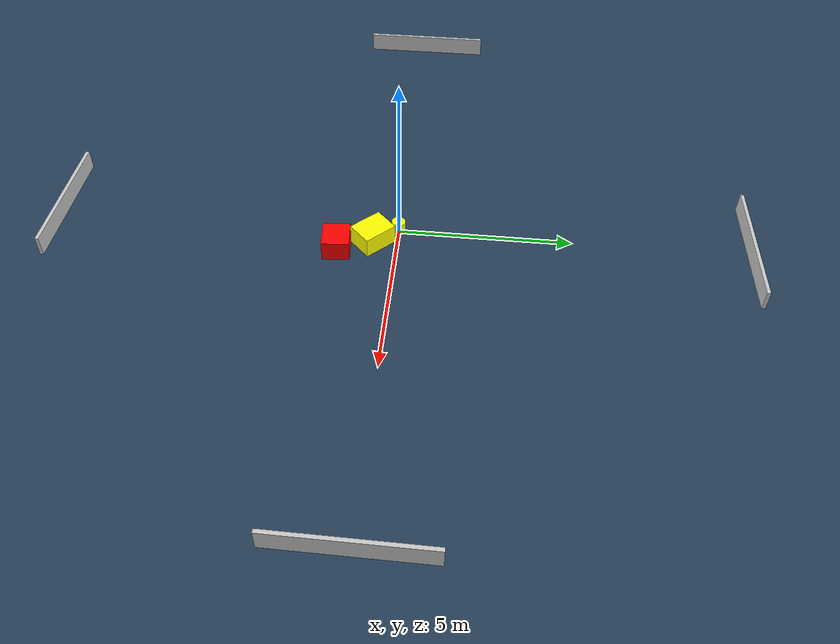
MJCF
<?xml version="1.0" ?>
<mujoco model="generated_environment">
  <option timestep="0.01" integrator="RK4" cone="elliptic"/>
  <default>
    <geom density="1"/>
  </default>
  <asset>
    <texture builtin="gradient" height="3072" name="skybox" rgb1="0.3 0.5 0.7" rgb2="0 0 0" type="skybox" width="512"/>
    <texture builtin="checker" height="300" name="groundplane" rgb1="0.2 0.3 0.4" rgb2="0.1 0.2 0.3" type="2d" width="300"/>
    <material name="groundplane" reflectance="0.2" texrepeat="5 5" texture="groundplane"/>
  </asset>
  <worldbody>
    <light dir="0 0 -1" directional="true" pos="0 0 1.5"/>
    <geom condim="3" friction="0.5 0.005 0.001" material="groundplane" name="floor" pos="0 0 0" size="0 0 0.05" type="plane"/>
    <body name="walls">
      <geom name="wall_1" condim="4" pos="-10.0 0.0 0.3" rgba="0.800000011920929 0.800000011920929 0.800000011920929 1.0" size="0.05 2.0 0.3" type="box"/>
      <geom name="wall_2" condim="4" pos="10.0 0.0 0.3" rgba="0.800000011920929 0.800000011920929 0.800000011920929 1.0" size="0.05 2.0 0.3" type="box"/>
      <geom name="wall_3" condim="4" pos="0.0 -10.0 0.3" rgba="0.800000011920929 0.800000011920929 0.800000011920929 1.0" size="2.0 0.05 0.3" type="box"/>
      <geom name="wall_4" condim="4" pos="0.0 10.0 0.3" rgba="0.800000011920929 0.800000011920929 0.800000011920929 1.0" size="2.0 0.05 0.3" type="box"/>
    </body>
    <body name="robot">
      <joint name="joint_x" type="slide" pos="0 0 0" axis="1 0 0"/>
      <joint name="joint_y" type="slide" pos="0 0 0" axis="0 1 0"/>
      <geom name="robot" type="cylinder" pos="0.0 0.0 0.2" size="0.2 0.2 0.0" mass="5.0" friction="1.0 0.005 0.0001" condim="4" rgba="1.0 1.0 0.0 1.0"/>
    </body>
    <body name="obstacle_1_movable">
      <geom name="obstacle_1_movable" condim="4" pos="0.502184970222279 -0.6902960755650289 0.3" euler="0 0 44.02071368214184" friction="0.0 0.005 0.001" rgba="1.0 1.0 0.0 1.0" size="0.39069512999636846 0.5038100052843126 0.3" type="box" mass="0.1"/>
      <joint type="free"/>
    </body>
    <body name="obstacle_2_static">
      <geom name="obstacle_2_static" condim="4" pos="0.9100981352287809 -1.6912003573860006 0.3" euler="0 0 94.83336251325287" friction="0.0 0.005 0.001" rgba="1.0 0.0 0.0 1.0" size="0.3920270411604503 0.42933210984935655 0.3" type="box"/>
    </body>
  </worldbody>
  <actuator>
    <motor name="actuator_x" joint="joint_x" gear="1" ctrlrange="-1 1"/>
    <motor name="actuator_y" joint="joint_y" gear="1" ctrlrange="-1 1"/>
  </actuator>
</mujoco>
